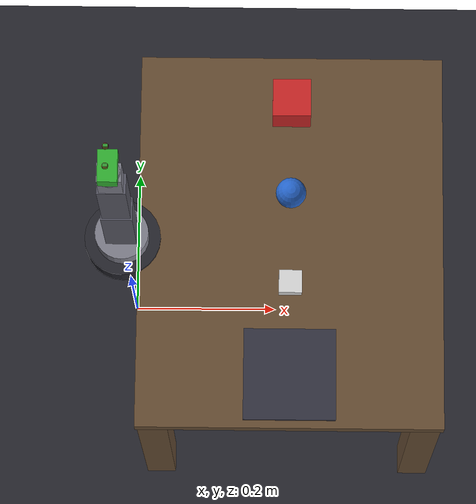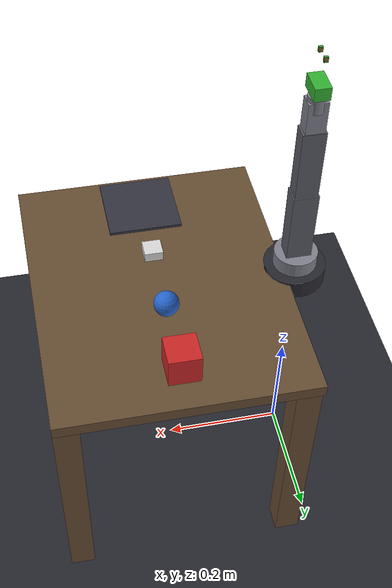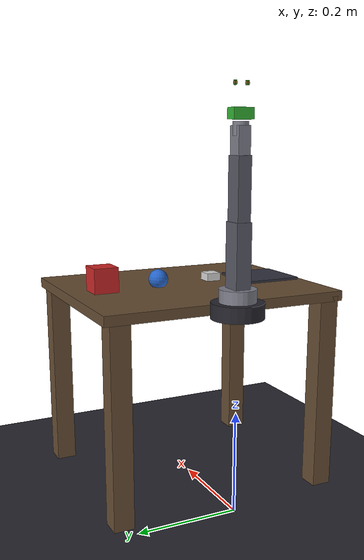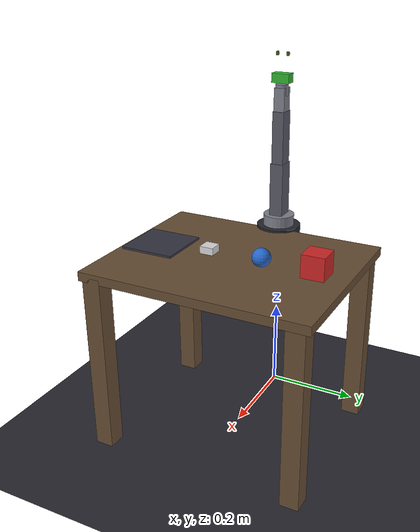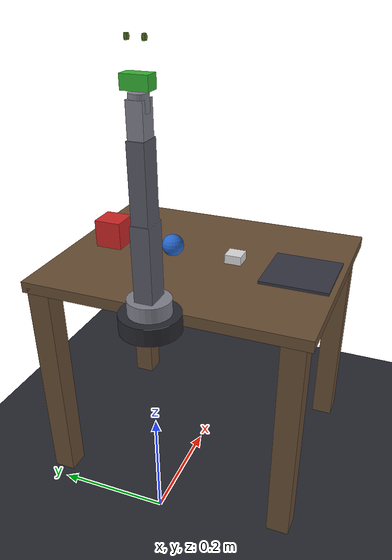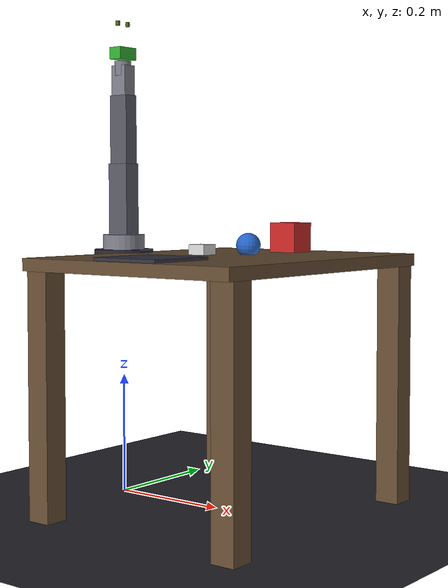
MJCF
<mujoco model="so_arm100_ido">

  <compiler angle="radian" coordinate="local"/>

  <option>
    <flag gravity="enable"/>
  </option>

  <default>
    <!-- v0.16.29: Reduced damping 0.5→0.15 — was over-damping arm motion -->
    <joint armature="0.01" damping="0.15" limited="true"/>
    <geom contype="1" conaffinity="1" condim="4" friction="0.8 0.02 0.01"/>
    <!-- v0.16.29: Boosted gains 8x — forcerange was ±2.5 (too low, arm couldn't move).
         In simulation we can exceed real ST3215 specs. kp/kv scaled proportionally. -->
    <position kp="400" kv="30" forcerange="-15 15"/>
    <default class="arm_link">
      <geom type="mesh" rgba="0.3 0.3 0.35 1" group="1"/>
    </default>
    <default class="finger">
      <geom type="box" rgba="0.2 0.6 0.2 1" group="1" friction="1.2 0.05 0.02"/>
    </default>
    <default class="object">
      <geom group="2"/>
    </default>
  </default>

  <asset>
    <material name="mat_base"     rgba="0.15 0.15 0.18 1"/>
    <material name="mat_arm"      rgba="0.35 0.35 0.40 1"/>
    <material name="mat_joint"    rgba="0.5 0.5 0.55 1"/>
    <material name="mat_gripper"  rgba="0.2 0.7 0.2 1"/>
    <material name="mat_red"      rgba="0.8 0.15 0.15 1"/>
    <material name="mat_blue"     rgba="0.15 0.4 0.8 1"/>
    <material name="mat_white"    rgba="0.85 0.85 0.85 1"/>
    <material name="mat_table"    rgba="0.4 0.3 0.2 1"/>
    <material name="mat_tray"     rgba="0.2 0.2 0.25 1"/>
  </asset>

  <worldbody>
    <!-- Ground plane -->
    <geom name="ground" type="plane" size="2.0 2.0 0.1" material="mat_base" condim="3"/>

    <!-- Lighting -->
    <light directional="true" diffuse="0.8 0.8 0.8" pos="0 0 3" dir="0 0 -1"/>
    <light pos="1.5 -1.5 2" diffuse="0.4 0.4 0.4" dir="-0.5 0.5 -1"/>

    <!-- ═══ CAMKit: Dual Camera System ═══ -->
    <!-- Top Camera: fixed bird's-eye view of workspace -->
    <!-- v0.16.28: moved to (0.22, -0.30, 0.80) to view new table position -->
    <camera name="top_cam" pos="0.22 -0.30 0.80" euler="60 0 0" fovy="0.87"/>
    <!-- Top cam resolution: 640×480 (set in renderer, not XML) -->

    <!-- Wrist Camera: attached to gripper, looking forward -->
    <!-- Offset: 0.02m above gripper base, tilted 90° to look along gripper axis -->
    <!-- This camera moves with the gripper — provides close-up view for grasping -->

    <!-- Table (v0.16.28: moved closer to arm — max reach is 0.325m) -->
    <body name="table" pos="0.22 0 0.0">
      <geom name="table_top" type="box" size="0.20 0.25 0.01" pos="0 0 0.40" material="mat_table" condim="3"/>
      <geom name="table_leg1" type="box" size="0.02 0.02 0.20" pos="0.18 0.22 0.20" material="mat_table" contype="0" conaffinity="0"/>
      <geom name="table_leg2" type="box" size="0.02 0.02 0.20" pos="0.18 -0.22 0.20" material="mat_table" contype="0" conaffinity="0"/>
      <geom name="table_leg3" type="box" size="0.02 0.02 0.20" pos="-0.18 0.22 0.20" material="mat_table" contype="0" conaffinity="0"/>
      <geom name="table_leg4" type="box" size="0.02 0.02 0.20" pos="-0.18 -0.22 0.20" material="mat_table" contype="0" conaffinity="0"/>
    </body>

    <!-- Tray (target placement) — on table near arm side -->
    <body name="tray" pos="0.22 -0.18 0.41">
      <geom name="tray_geom" type="box" size="0.06 0.06 0.005" material="mat_tray" condim="3"/>
    </body>

    <!-- Objects to grasp — all within arm reach (horiz dist < 0.30m) -->
    <!-- Task A: Red Cube (50g, 5cm) — primary grasp target -->
    <body name="red_cube" pos="0.22 0.18 0.435">
      <freejoint name="cube_joint"/>
      <geom name="cube_geom" type="box" size="0.025 0.025 0.025" mass="0.05" material="mat_red" class="object" friction="1.2 0.05 0.02"/>
    </body>

    <!-- Task B: Blue Ball (2.7g, ping-pong ball) -->
    <body name="blue_ball" pos="0.22 0.06 0.425">
      <freejoint name="ball_joint"/>
      <geom name="ball_geom" type="sphere" size="0.02" mass="0.0027" material="mat_blue" class="object" friction="0.3 0.01 0.005"/>
    </body>

    <!-- Task C: White Tissue (0.5g, soft) -->
    <body name="white_tissue" pos="0.22 -0.06 0.422">
      <freejoint name="tissue_joint"/>
      <geom name="tissue_geom" type="box" size="0.015 0.015 0.008" mass="0.0005" material="mat_white" class="object" friction="0.15 0.005 0.002"/>
    </body>

    <!-- ── SO-ARM100 Robot Arm ── -->
    <body name="arm_base" pos="0 0 0.40">
      <!-- Base mount -->
      <geom name="base_plate" type="cylinder" size="0.05 0.015" zaxis="0 0 1" material="mat_base" condim="3"/>

      <body name="shoulder" pos="0 0 0.02">
        <!-- Joint 1: Rotation (base yaw) -->
        <joint name="Rotation" type="hinge" axis="0 0 1" range="-3.14 3.14" class="arm_link"/>
        <geom name="shoulder_geom" type="cylinder" size="0.035 0.02" zaxis="0 0 1" material="mat_joint"/>

        <body name="upper_arm" pos="0 0 0.025">
          <!-- Joint 2: Pitch (shoulder) -->
          <joint name="Pitch" type="hinge" axis="1 0 0" range="-1.571 1.571" class="arm_link"/>
          <geom name="upper_arm_geom" type="box" size="0.02 0.015 0.075" pos="0 0 0.04" material="mat_arm"/>

          <body name="forearm" pos="0 0 0.12">
            <!-- Joint 3: Elbow -->
            <joint name="Elbow" type="hinge" axis="1 0 0" range="-1.571 2.356" class="arm_link"/>
            <geom name="forearm_geom" type="box" size="0.018 0.013 0.07" pos="0 0 0.04" material="mat_arm"/>

            <body name="wrist_pitch" pos="0 0 0.115">
              <!-- Joint 4: Wrist Pitch -->
              <joint name="Wrist_Pitch" type="hinge" axis="1 0 0" range="-1.571 1.571" class="arm_link"/>
              <geom name="wrist_pitch_geom" type="box" size="0.015 0.012 0.03" pos="0 0 0.015" material="mat_joint"/>

              <body name="wrist_roll" pos="0 0 0.04">
                <!-- Joint 5: Wrist Roll -->
                <joint name="Wrist_Roll" type="hinge" axis="0 0 1" range="-3.14 3.14" class="arm_link"/>
                <geom name="wrist_roll_geom" type="cylinder" size="0.014 0.012" zaxis="0 0 1" material="mat_joint"/>

                <body name="gripper_base" pos="0 0 0.025">
                  <geom name="gripper_base_geom" type="box" size="0.012 0.02 0.01" material="mat_gripper"/>

                  <!-- CAMKit wrist_cam: mounted on gripper, looks forward along -Z (toward objects) -->
                  <!-- Small offset above fingers, 90° tilt to look down at grasp point -->
                  <camera name="wrist_cam" pos="0 0 0.015" euler="-1.5708 0 0" fovy="1.0"/>

                  <!-- Left finger -->
                  <body name="left_finger" pos="0 0.012 0.012">
                    <joint name="Gripper_Left" type="hinge" axis="0 1 0" range="0 0.873" class="finger"/>
                    <geom name="left_finger_geom" type="box" size="0.003 0.002 0.004" pos="0 0 0.038" class="finger"/>
                    <site name="fsr_left" pos="0 0 0.038" size="0.004" rgba="1 0 0 0.3"/>
                  </body>

                  <!-- Right finger -->
                  <body name="right_finger" pos="0 -0.012 0.012">
                    <joint name="Gripper_Right" type="hinge" axis="0 1 0" range="-0.873 0" class="finger"/>
                    <geom name="right_finger_geom" type="box" size="0.003 0.002 0.004" pos="0 0 0.038" class="finger"/>
                    <site name="fsr_right" pos="0 0 0.038" size="0.004" rgba="1 0 0 0.3"/>
                  </body>
                </body>
              </body>
            </body>
          </body>
        </body>
      </body>
    </body>
  </worldbody>

  <!-- Contact exclusions: don't self-collide within arm segments -->
  <contact>
    <exclude body1="arm_base" body2="shoulder"/>
    <exclude body1="shoulder" body2="upper_arm"/>
    <exclude body1="upper_arm" body2="forearm"/>
    <exclude body1="forearm" body2="wrist_pitch"/>
    <exclude body1="wrist_pitch" body2="wrist_roll"/>
    <exclude body1="wrist_roll" body2="gripper_base"/>
    <exclude body1="gripper_base" body2="left_finger"/>
    <exclude body1="gripper_base" body2="right_finger"/>
    <!-- v0.16.32: Gripper vs objects — prevent collision launches -->
    <exclude body1="gripper_base" body2="red_cube"/>
    <exclude body1="left_finger" body2="red_cube"/>
    <exclude body1="right_finger" body2="red_cube"/>
    <exclude body1="gripper_base" body2="blue_ball"/>
    <exclude body1="left_finger" body2="blue_ball"/>
    <exclude body1="right_finger" body2="blue_ball"/>
    <exclude body1="gripper_base" body2="white_tissue"/>
    <exclude body1="left_finger" body2="white_tissue"/>
    <exclude body1="right_finger" body2="white_tissue"/>
  </contact>

  <!-- Actuators: ST3215 servos with gear ratios -->
  <!-- v0.16.29: Boosted gains for simulation responsiveness.
       Real ST3215: 0.05 N·m × gear=50 = 2.5 N·m. In sim we use 15 N·m (6x) for snappy motion. -->
  <actuator>
    <position name="Rotation"    joint="Rotation"     gear="50" kp="400" kv="30" forcerange="-15 15" ctrlrange="-3.14 3.14"/>
    <position name="Pitch"       joint="Pitch"         gear="50" kp="400" kv="30" forcerange="-15 15" ctrlrange="-1.571 1.571"/>
    <position name="Elbow"       joint="Elbow"         gear="50" kp="400" kv="30" forcerange="-15 15" ctrlrange="-1.571 2.356"/>
    <position name="Wrist_Pitch" joint="Wrist_Pitch"   gear="30" kp="250" kv="18" forcerange="-8 8"   ctrlrange="-1.571 1.571"/>
    <position name="Wrist_Roll"  joint="Wrist_Roll"    gear="30" kp="250" kv="18" forcerange="-8 8"   ctrlrange="-3.14 3.14"/>
    <position name="Gripper_L"   joint="Gripper_Left"  gear="20" kp="150" kv="10" forcerange="-5 5"   ctrlrange="0 0.873"/>
    <position name="Gripper_R"   joint="Gripper_Right" gear="20" kp="150" kv="10" forcerange="-5 5"   ctrlrange="-0.873 0"/>
  </actuator>

  <!-- Sensors for IDO κ-Snap audit -->
  <sensor>
    <jointpos name="jp_Rotation"   joint="Rotation"/>
    <jointpos name="jp_Pitch"      joint="Pitch"/>
    <jointpos name="jp_Elbow"      joint="Elbow"/>
    <jointpos name="jp_Wrist_P"    joint="Wrist_Pitch"/>
    <jointpos name="jp_Wrist_R"    joint="Wrist_Roll"/>
    <jointpos name="jp_Gripper_L"  joint="Gripper_Left"/>
    <jointpos name="jp_Gripper_R"  joint="Gripper_Right"/>

    <jointvel name="jv_Rotation"   joint="Rotation"/>
    <jointvel name="jv_Pitch"      joint="Pitch"/>
    <jointvel name="jv_Elbow"      joint="Elbow"/>
    <jointvel name="jv_Wrist_P"    joint="Wrist_Pitch"/>
    <jointvel name="jv_Wrist_R"    joint="Wrist_Roll"/>

    <touch name="touch_L" site="fsr_left"/>
    <touch name="touch_R" site="fsr_right"/>
  </sensor>

  <!-- Custom numeric: ψ-Anchor configuration -->
  <custom>
    <numeric name="ST3215_MAX_TORQUE" data="0.05"/>
    <numeric name="MAX_GRIP_FORCE"    data="2.0"/>
    <numeric name="NO_SPILL_ANGLE"    data="0.524"/>  <!-- 30 degrees in radians -->
  </custom>

  <!-- FSR sensor sites on fingertips -->
  <!-- Placed at the end of each finger for force sensing -->
</mujoco>
